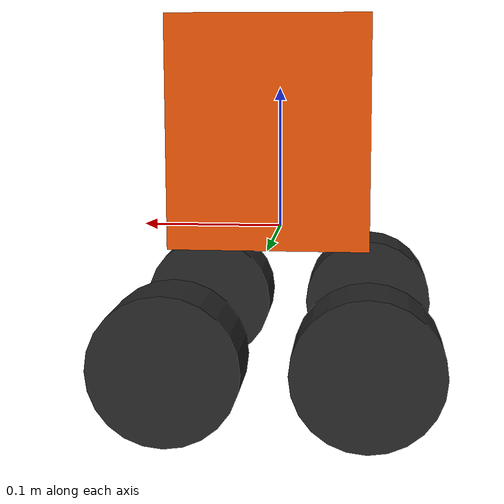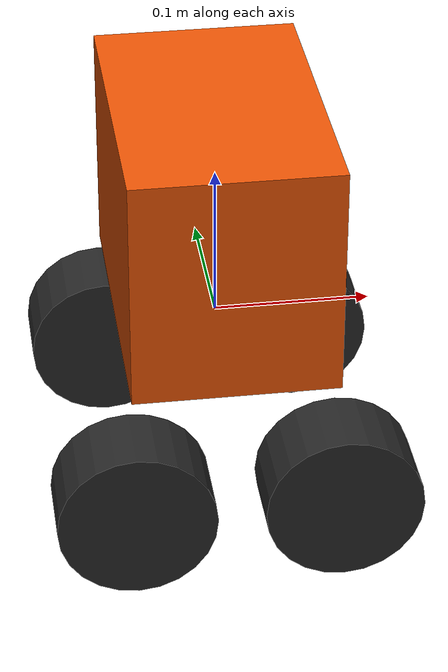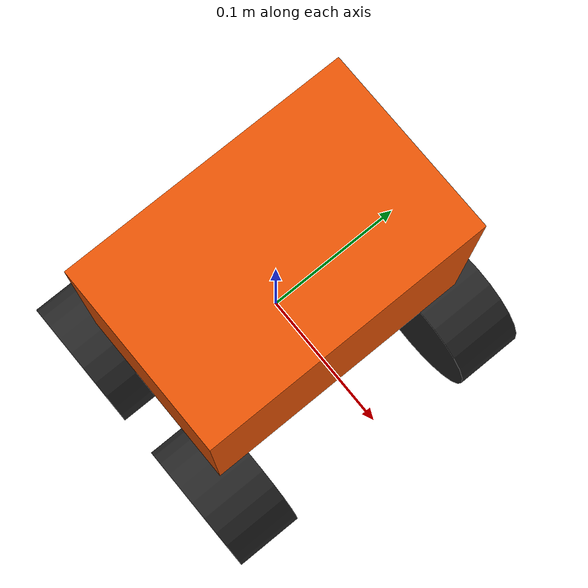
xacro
<?xml version="1.0"?>
<!-- Basic mecanum drive mobile base -->
<robot xmlns:xacro="http://www.ros.org/wiki/xacro" name="mecanumdrive_robot">
    <xacro:arg name="prefix" default="" />
    <xacro:arg name="use_mock_hardware" default="false" />

    <xacro:include filename="$(find cmeresearch_description)/urdf/cmexa/cmexa_description.urdf.xacro" />

    <!-- Import Rviz colors -->
    <xacro:include filename="$(find cmeresearch_description)/urdf/materials.xacro" />

    <!-- Import mecanum drive ros2_control description -->
    <xacro:include filename="$(find cmeresearch_description)/urdf/cmexa/cmexa_mecanum.ros2_control.xacro" />

    <xacro:cmexa prefix="$(arg prefix)" />

    <xacro:cmexa_ros2_control
            name="CMEXA" prefix="$(arg prefix)" use_mock_hardware="$(arg use_mock_hardware)"/>

</robot>

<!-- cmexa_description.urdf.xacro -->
<robot xmlns:xacro="http://www.ros.org/wiki/xacro">

  <xacro:macro name="cmexa" params="prefix">

  <!-- Robot constants and properties -->
  <xacro:include filename="$(find cmeresearch_description)/urdf/cmexa/cmexa_properties.urdf.xacro" />

  <xacro:property name="z_offset" value="-${chassis_height/2}" /> <!-- Space btw top of beam and the each joint -->
  <xacro:property name="wheel_mass" value="0.3"/>
  <!-- Base Link -->

  <link name="${prefix}base_link">
    <collision>
      <origin xyz="0 0 0" rpy="0 0 0"/>
      <geometry>
        <mesh filename="package://cmeresearch_description/meshes/cmexa/cmexa-base.stl" scale="0.001 0.001 0.001"/>
      </geometry>
    </collision>

    <visual>
      <origin xyz="0 0 ${chassis_height/2}" rpy="0 0 0"/>
      <geometry>
        <box size="${chassis_width} ${chassis_length} ${chassis_height}"/>
      </geometry>
      <material name="orange"/>
    </visual>

    <inertial>
      <origin xyz="0 0 0" rpy="0 0 0"/>
      <mass value="${chassis_mass}"/>
      <inertia
        ixx="${chassis_mass / 12.0 * (chassis_length*chassis_length + chassis_height*chassis_height)}" ixy="0.0" ixz="0.0"
        iyy="${chassis_mass / 12.0 * (chassis_height*chassis_height + chassis_width*chassis_width)}" iyz="0.0"
        izz="${chassis_mass / 12.0 * (chassis_width*chassis_width + chassis_length*chassis_length)}"/>
      </inertial>
    </link>

    <!-- Front left wheel -->
    <joint name="${prefix}front_left_wheel_joint" type="continuous">
      <parent link="${prefix}base_link"/>
      <child link="${prefix}front_left_wheel"/>
      <origin xyz="${chassis_width/2} ${chassis_length/2} ${z_offset}" rpy="0 0 0"/>
      <axis xyz="0 1 0"/>
      <dynamics damping="0.2"/>
      <limit effort="100" velocity="1.0"/>
    </joint>

    <!-- front left wheel Link -->
    <link name="${prefix}front_left_wheel">
      <collision>
        <origin xyz="0 0 0" rpy="${PI/2} 0 0"/>
        <geometry>
          <cylinder length="${wheel_width}" radius="${wheel_radius}"/>
        </geometry>
      </collision>

      <visual>
        <origin xyz="0 0 0" rpy="${PI/2} 0 0"/>
        <geometry>
          <cylinder length="${wheel_width}" radius="${wheel_radius}"/>
        </geometry>
        <material name="black"/>
      </visual>

      <inertial>
        <origin xyz="0 0 0" rpy="${PI/2} 0 0"/>
        <mass value="${wheel_mass}"/>
        <inertia
                ixx="${wheel_mass / 12.0 * (3*wheel_radius*wheel_radius + wheel_width*wheel_width)}" ixy="0.0" ixz="0.0"
                iyy="${wheel_mass / 12.0 * (3*wheel_radius*wheel_radius + wheel_width*wheel_width)}" iyz="0.0"
                izz="${wheel_mass / 2.0 * wheel_radius*wheel_radius}"/>
      </inertial>
    </link>

    <!-- Front right wheel -->
    <joint name="${prefix}front_right_wheel_joint" type="continuous">
      <parent link="${prefix}base_link"/>
      <child link="${prefix}front_right_wheel"/>
      <origin xyz="-${chassis_width/2} ${chassis_length/2} ${z_offset}" rpy="0 0 0"/>
      <axis xyz="0 1 0"/>
      <dynamics damping="0.2"/>
      <limit effort="100" velocity="1.0"/>
    </joint>

    <!-- front right wheel Link -->
    <link name="${prefix}front_right_wheel">
      <collision>
        <origin xyz="0 0 0" rpy="${PI/2} 0 0"/>
        <geometry>
          <cylinder length="${wheel_width}" radius="${wheel_radius}"/>
        </geometry>
      </collision>

      <visual>
        <origin xyz="0 0 0" rpy="${PI/2} 0 0"/>
        <geometry>
          <cylinder length="${wheel_width}" radius="${wheel_radius}"/>
        </geometry>
        <material name="black"/>
      </visual>

      <inertial>
        <origin xyz="0 0 0" rpy="${PI/2} 0 0"/>
        <mass value="${wheel_mass}"/>
        <inertia
                ixx="${wheel_mass / 12.0 * (3*wheel_radius*wheel_radius + wheel_width*wheel_width)}" ixy="0.0" ixz="0.0"
                iyy="${wheel_mass / 12.0 * (3*wheel_radius*wheel_radius + wheel_width*wheel_width)}" iyz="0.0"
                izz="${wheel_mass / 2.0 * wheel_radius*wheel_radius}"/>
      </inertial>
    </link>

    <!-- rear left wheel -->
    <joint name="${prefix}rear_left_wheel_joint" type="continuous">
      <parent link="${prefix}base_link"/>
      <child link="${prefix}rear_left_wheel"/>
      <origin xyz="${chassis_width/2} -${chassis_length/2} ${z_offset}" rpy="0 0 0"/>
      <axis xyz="0 1 0"/>
      <dynamics damping="0.2"/>
      <limit effort="100" velocity="1.0"/>
    </joint>

    <!-- rear left wheel Link -->
    <link name="${prefix}rear_left_wheel">
      <collision>
        <origin xyz="0 0 0" rpy="${PI/2} 0 0"/>
        <geometry>
          <cylinder length="${wheel_width}" radius="${wheel_radius}"/>
        </geometry>
      </collision>

      <visual>
        <origin xyz="0 0 0" rpy="${PI/2} 0 0"/>
        <geometry>
          <cylinder length="${wheel_width}" radius="${wheel_radius}"/>
        </geometry>
        <material name="black"/>
      </visual>

      <inertial>
        <origin xyz="0 0 0" rpy="${PI/2} 0 0"/>
        <mass value="${wheel_mass}"/>
        <inertia
                ixx="${wheel_mass / 12.0 * (3*wheel_radius*wheel_radius + wheel_width*wheel_width)}" ixy="0.0" ixz="0.0"
                iyy="${wheel_mass / 12.0 * (3*wheel_radius*wheel_radius + wheel_width*wheel_width)}" iyz="0.0"
                izz="${wheel_mass / 2.0 * wheel_radius*wheel_radius}"/>
      </inertial>
    </link>

    <!-- rear right wheel -->
    <joint name="${prefix}rear_right_wheel_joint" type="continuous">
      <parent link="${prefix}base_link"/>
      <child link="${prefix}rear_right_wheel"/>
      <origin xyz="-${chassis_width/2} -${chassis_length/2} ${z_offset}" rpy="0 0 0"/>
      <axis xyz="0 1 0"/>
      <dynamics damping="0.2"/>
      <limit effort="100" velocity="1.0"/>
    </joint>

    <!-- rear right wheel Link -->
    <link name="${prefix}rear_right_wheel">
      <collision>
        <origin xyz="0 0 0" rpy="${PI/2} 0 0"/>
        <geometry>
          <cylinder length="${wheel_width}" radius="${wheel_radius}"/>
        </geometry>
      </collision>

      <visual>
        <origin xyz="0 0 0" rpy="${PI/2} 0 0"/>
        <geometry>
          <cylinder length="${wheel_width}" radius="${wheel_radius}"/>
        </geometry>
        <material name="black"/>
      </visual>

      <inertial>
        <origin xyz="0 0 0" rpy="${PI/2} 0 0"/>
        <mass value="${wheel_mass}"/>
        <inertia
                ixx="${wheel_mass / 12.0 * (3*wheel_radius*wheel_radius + wheel_width*wheel_width)}" ixy="0.0" ixz="0.0"
                iyy="${wheel_mass / 12.0 * (3*wheel_radius*wheel_radius + wheel_width*wheel_width)}" iyz="0.0"
                izz="${wheel_mass / 2.0 * wheel_radius*wheel_radius}"/>
      </inertial>
    </link>

  </xacro:macro>
</robot>

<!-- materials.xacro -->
<robot>
  <material name="dark_grey"><color rgba="0.2 0.2 0.2 1.0" /></material>
  <material name="light_grey"><color rgba="0.4 0.4 0.4 1.0" /></material>
  <material name="yellow"><color rgba="0.8 0.8 0.0 1.0" /></material>
  <material name="black"><color rgba="0.15 0.15 0.15 1.0" /></material>
  <material name="green"><color rgba="0.25 0.75 0.25 1.0" /></material>
  <material name="orange"><color rgba="0.92 0.33 0.02 1.0" /></material>
</robot>

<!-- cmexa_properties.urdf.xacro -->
<robot xmlns:xacro="http://www.ros.org/wiki/xacro">

  <xacro:property name="PI" value="3.1415926535897931" />

  <!-- wheelbase = distance between wheel axis (x-direction)
       example: distance between wheel_front_right and wheel_rear_right-->
  <xacro:property name="wheelbase" value="0.300" />
  <!-- track = distance between wheels (y-direction)
       example: distance between wheel_front_right and wheel_front_left -->
  <xacro:property name="track" value="0.354" />
  <!-- vertical offset means height -->
  <xacro:property name="wheel_vertical_offset" value="0.01" />
  <xacro:property name="footprint_vertical_offset" value="0.0" />

  <xacro:property name="wheel_radius" value="0.05" />
  <xacro:property name="wheel_width" value="0.050" />

  <xacro:property name="chassis_length" value="0.200" />
  <xacro:property name="chassis_width" value="0.130" />
  <xacro:property name="chassis_height" value="0.150" />
  <xacro:property name="chassis_mass" value="0.3" /> <!-- correct this later -->

  <xacro:property name="dummy_inertia" value="1e-09"/>

  <xacro:property name="mount_spacing" value="0.120" />

</robot>
